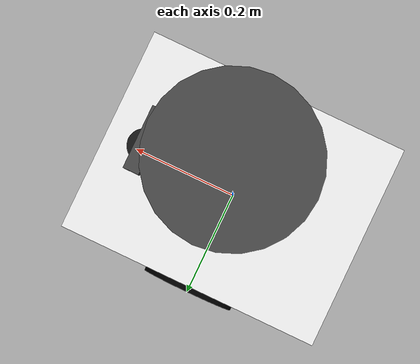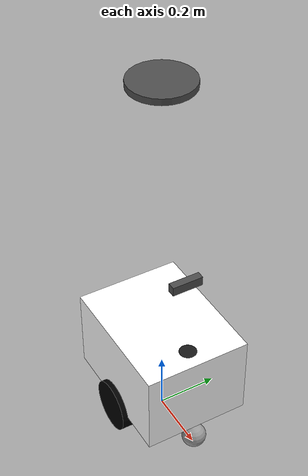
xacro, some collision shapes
<?xml version="1.0"?>

<robot name="amiibot" xmlns:xacro="http://www.ros.org/wiki/xacro">

    <xacro:property name="mesh_path" value="$(find amiibot_description)/meshes"/>

    <!-- LINKS -->

    <link name="base_footprint"/>

    <link name="base_link">
        <visual>
            <origin xyz="0 0 0" rpy="1.5708 0 1.5708"/>
            <geometry>
                <mesh filename="${mesh_path}/base_link_300.stl" scale="0.001 0.001 0.001"/>
            </geometry>
            <material name="white">
                <color rgba="1.0 1.0 1.0 1.0"/>
            </material>
        </visual>
        <collision>
            <origin xyz="0 0 0.20" rpy="0 0 0"/>
            <geometry>
                <box size="0.45 0.35 0.28"/>
            </geometry>
        </collision>
        <inertial>
            <origin xyz="0 0 0" rpy="0 0 0"/>
            <mass value="30.0"/>
            <inertia
              ixx="0.637399" ixy="-0.005718" ixz="0.005136"
              iyy="1.043697" iyz="0.010418"
              izz="0.711315"/>
        </inertial>
    </link>

    <link name="left_wheel">
        <visual>
            <origin xyz="0 0 0" rpy="1.5708 0 0"/>
            <geometry>
                <cylinder radius="0.0855" length="0.04"/>
            </geometry>
            <material name="black">
                <color rgba="0.0 0.0 0.0 1.0"/>
            </material>
        </visual>
        <collision>
            <origin xyz="0 0 0" rpy="1.5708 0 0"/>
            <geometry>
                <cylinder radius="0.0855" length="0.04"/>
            </geometry>
        </collision>
        <inertial>
            <origin xyz="0 0 0" rpy="0 0 0"/>
            <mass value="1.0"/>
            <inertia
              ixx="0.0116" ixy="0" ixz="0"
              iyy="0.0063" iyz="0"
              izz="0.0063"/>
        </inertial>
    </link>

    <link name="right_wheel">
        <visual>
            <origin xyz="0 0 0" rpy="1.5708 0 0"/>
            <geometry>
                <cylinder radius="0.0855" length="0.04"/>
            </geometry>
            <material name="black">
                <color rgba="0.0 0.0 0.0 1.0"/>
            </material>
        </visual>
        <collision>
            <origin xyz="0 0 0" rpy="1.5708 0 0"/>
            <geometry>
                <cylinder radius="0.0855" length="0.04"/>
            </geometry>
        </collision>
        <inertial>
            <origin xyz="0 0 0" rpy="0 0 0"/>
            <mass value="1.0"/>
            <inertia
              ixx="0.0116" ixy="0" ixz="0"
              iyy="0.0063" iyz="0"
              izz="0.0063"/>
        </inertial>
    </link>

    <link name="front_caster_wheel">
        <visual>
            <origin xyz="0 0 0" rpy="0 0 0"/>
            <geometry>
                <sphere radius="0.04"/>
            </geometry>
            <material name="gray">
                <color rgba="0.6 0.6 0.6 1.0"/>
            </material>
        </visual>
        <collision>
            <origin xyz="0 0 0" rpy="0 0 0"/>
            <geometry>
                <sphere radius="0.04"/>
            </geometry>
        </collision>
        <inertial>
            <origin xyz="0 0 0" rpy="0 0 0"/>
            <mass value="0.2"/>
            <inertia ixx="0.01" ixy="0" ixz="0" iyy="0.01" iyz="0" izz="0.01"/>
        </inertial>
    </link>

    <link name="back_caster_wheel">
        <visual>
            <origin xyz="0 0 0" rpy="0 0 0"/>
            <geometry>
                <sphere radius="0.04"/>
            </geometry>
            <material name="gray">
                <color rgba="0.6 0.6 0.6 1.0"/>
            </material>
        </visual>
        <collision>
            <origin xyz="0 0 0" rpy="0 0 0"/>
            <geometry>
                <sphere radius="0.04"/>
            </geometry>
        </collision>
        <inertial>
            <origin xyz="0 0 0" rpy="0 0 0"/>
            <mass value="0.2"/>
            <inertia ixx="0.01" ixy="0" ixz="0" iyy="0.01" iyz="0" izz="0.01"/>
        </inertial>
    </link>

    <link name="imu">
        <visual>
            <origin xyz="0 0 0" rpy="0 0 0"/>
            <geometry>
                <box size="0.03 0.03 0.01"/>
            </geometry>
            <material name="gray">
                <color rgba="0.3 0.3 0.3 1"/>
            </material>
        </visual>
    </link>

    <link name="laser">
        <visual>
            <origin xyz="0 0 -0.025" rpy="1.5708 0 -1.5708"/>
            <geometry>
                <mesh filename="${mesh_path}/lidar.stl" scale="0.001 0.001 0.001"/>
            </geometry>
            <material name="black">
                <color rgba="0.1 0.1 0.1 1"/>
            </material>
        </visual>
    </link>

    <link name="microphone">
        <visual>
            <origin xyz="0 0 0" rpy="0 0 0"/>
            <geometry>
                <cylinder radius="0.1" length="0.02"/>
            </geometry>
            <material name="gray">
                <color rgba="0.3 0.3 0.3 1"/>
            </material>
        </visual>
    </link>

    <link name="depth_camera">
        <visual>
            <origin xyz="0 0 0" rpy="0 0 0"/>
            <geometry>
                <box size="0.025 0.1 0.03"/>
            </geometry>
            <material name="gray">
                <color rgba="0.3 0.3 0.3 1"/>
            </material>
        </visual>
    </link>

    <!-- JOINTS -->

    <joint name="base_joint" type="fixed">
        <parent link="base_footprint"/>
        <child link="base_link"/>
        <origin xyz="0 0 0.04" rpy="0 0 0"/>
    </joint>

    <joint name="left_wheel_joint" type="continuous">
        <parent link="base_link"/>
        <child link="left_wheel"/>
        <origin xyz="0 0.1725 0.0455" rpy="0 0 0"/>
        <axis xyz="0 1 0"/>
        <dynamics damping="0.2"/>
    </joint>

    <joint name="right_wheel_joint" type="continuous">
        <parent link="base_link"/>
        <child link="right_wheel"/>
        <origin xyz="0 -0.1725 0.0455" rpy="0 0 0"/>
        <axis xyz="0 1 0"/>
        <dynamics damping="0.2"/>
    </joint>

    <joint name="front_caster_joint" type="fixed">
        <origin xyz="0.2075 0 0" rpy="0 0 0"/>
        <parent link="base_link"/>
        <child link="front_caster_wheel"/>
    </joint>

    <joint name="back_caster_joint" type="fixed">
        <origin xyz="-0.2075 0 0" rpy="0 0 0"/>
        <parent link="base_link"/>
        <child link="back_caster_wheel"/>
    </joint>

    <joint name="imu_joint" type="fixed">
        <parent link="base_link"/>
        <child link="imu"/>
        <origin xyz="0 0 0.10" rpy="0 0 0"/>
    </joint>

    <joint name="laser_joint" type="fixed">
        <parent link="base_link"/>
        <child link="laser"/>
        <origin xyz="0.16 0 0.325" rpy="0 0 3.14159265"/>
    </joint>

    <joint name="microphone_joint" type="fixed">
        <parent link="base_link"/>
        <child link="microphone"/>
        <origin xyz="0 0 1.2" rpy="0 0 0"/>
    </joint>

    <joint name="depth_camera_joint" type="fixed">
        <parent link="base_link"/>
        <child link="depth_camera"/>
        <origin xyz="0.14 0 0.6" rpy="0 0 0"/>
    </joint>

    <link name="depth_camera_optical_frame"/>

    <joint name="depth_camera_optical_joint" type="fixed">
        <parent link="depth_camera"/>
        <child link="depth_camera_optical_frame"/>
        <origin xyz="0 0 0" rpy="0 0 0"/>
    </joint>

</robot>
